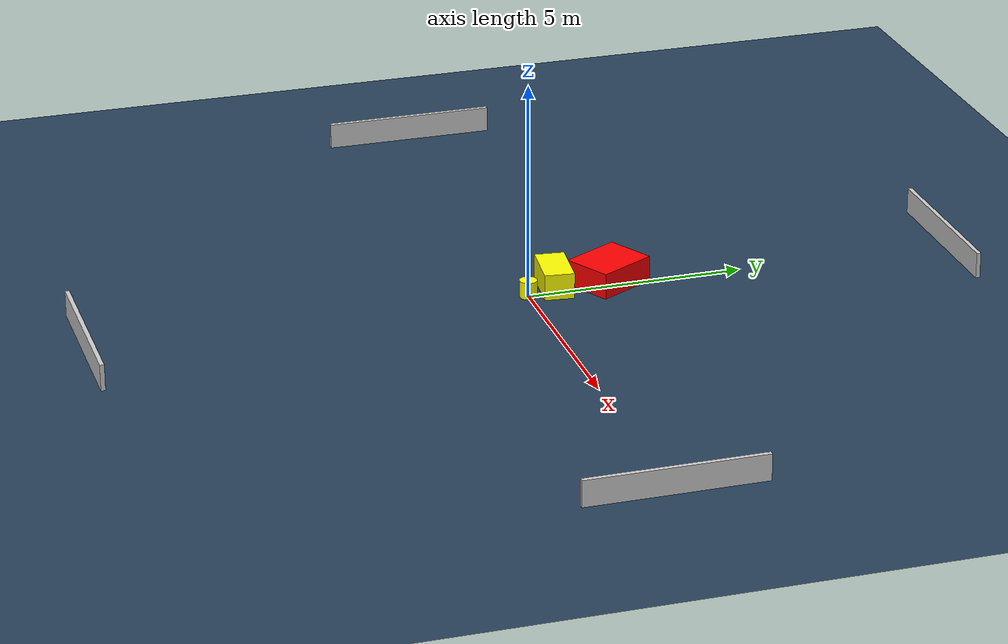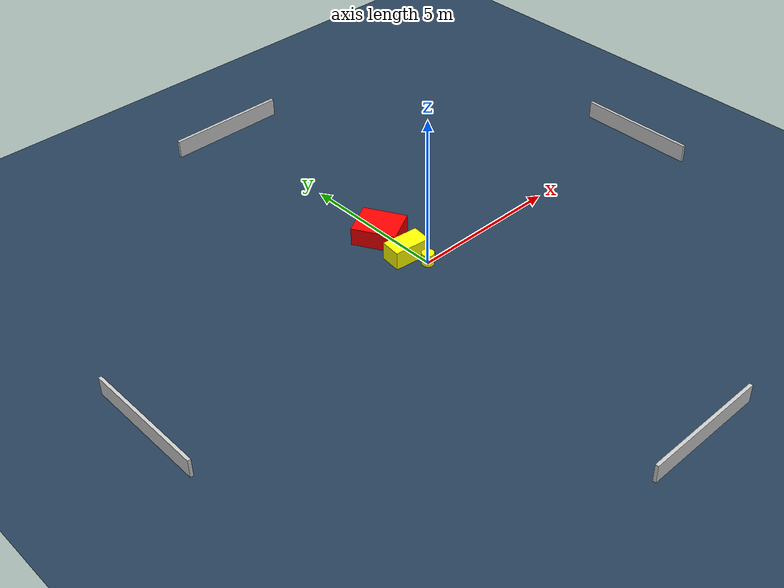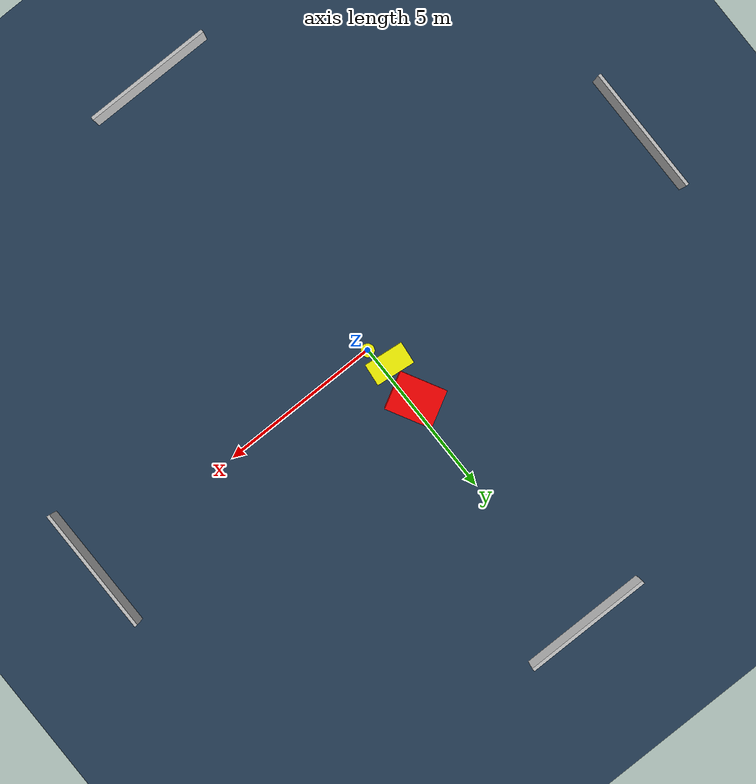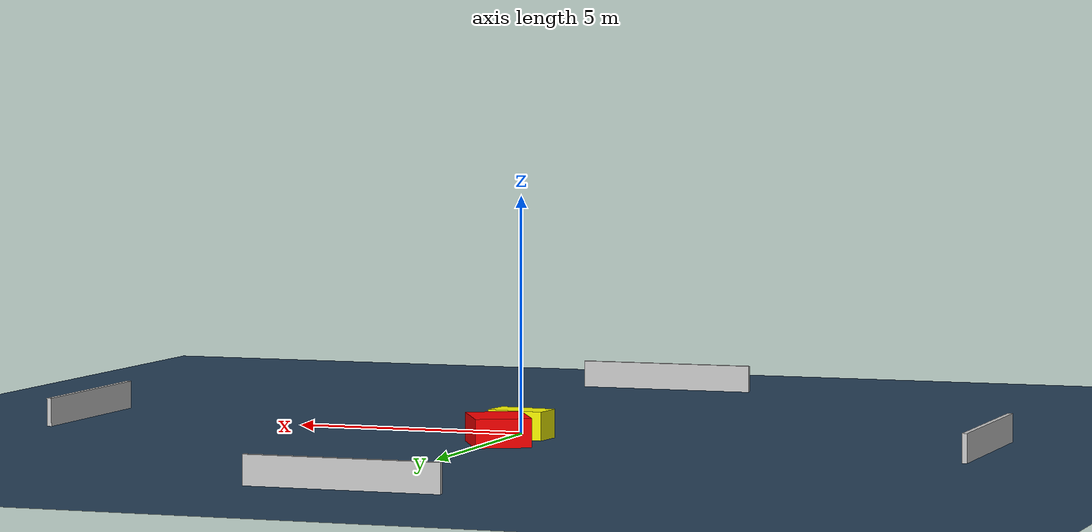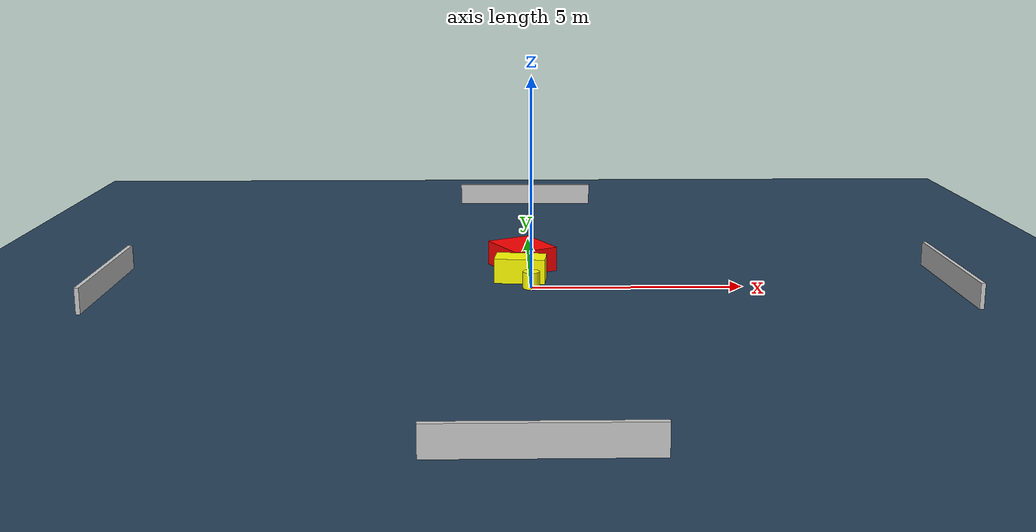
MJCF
<?xml version="1.0" ?>
<mujoco model="generated_environment">
  <option timestep="0.01" integrator="RK4" cone="elliptic"/>
  <default>
    <geom density="1"/>
  </default>
  <asset>
    <texture builtin="gradient" height="3072" name="skybox" rgb1="0.3 0.5 0.7" rgb2="0 0 0" type="skybox" width="512"/>
    <texture builtin="checker" height="300" name="groundplane" rgb1="0.2 0.3 0.4" rgb2="0.1 0.2 0.3" type="2d" width="300"/>
    <material name="groundplane" reflectance="0.2" texrepeat="5 5" texture="groundplane"/>
  </asset>
  <worldbody>
    <light dir="0 0 -1" directional="true" pos="0 0 1.5"/>
    <geom condim="3" friction="0.5 0.005 0.001" material="groundplane" name="floor" pos="0 0 0" size="0 0 0.05" type="plane"/>
    <body name="walls">
      <geom name="wall_1" condim="4" pos="-10.0 0.0 0.3" rgba="0.800000011920929 0.800000011920929 0.800000011920929 1.0" size="0.05 2.0 0.3" type="box"/>
      <geom name="wall_2" condim="4" pos="10.0 0.0 0.3" rgba="0.800000011920929 0.800000011920929 0.800000011920929 1.0" size="0.05 2.0 0.3" type="box"/>
      <geom name="wall_3" condim="4" pos="0.0 -10.0 0.3" rgba="0.800000011920929 0.800000011920929 0.800000011920929 1.0" size="2.0 0.05 0.3" type="box"/>
      <geom name="wall_4" condim="4" pos="0.0 10.0 0.3" rgba="0.800000011920929 0.800000011920929 0.800000011920929 1.0" size="2.0 0.05 0.3" type="box"/>
    </body>
    <body name="robot">
      <joint name="joint_x" type="slide" pos="0 0 0" axis="1 0 0"/>
      <joint name="joint_y" type="slide" pos="0 0 0" axis="0 1 0"/>
      <geom name="robot" type="cylinder" pos="0.0 0.0 0.2" size="0.2 0.2 0.0" mass="5.0" friction="1.0 0.005 0.0001" condim="4" rgba="1.0 1.0 0.0 1.0"/>
    </body>
    <body name="obstacle_1_movable">
      <geom name="obstacle_1_movable" condim="4" pos="-0.2431552878825533 0.6835377984837153 0.3" euler="0 0 83.77728404212102" friction="0.0 0.005 0.001" rgba="1.0 1.0 0.0 1.0" size="0.3401123916267315 0.6088637694697079 0.3" type="box" mass="0.1"/>
      <joint type="free"/>
    </body>
    <body name="obstacle_2_static">
      <geom name="obstacle_2_static" condim="4" pos="-0.191652567710933 1.9488785723954931 0.3" euler="0 0 28.580823776716862" friction="0.0 0.005 0.001" rgba="1.0 0.0 0.0 1.0" size="0.5833589745688845 0.7188799215739865 0.3" type="box"/>
    </body>
  </worldbody>
  <actuator>
    <motor name="actuator_x" joint="joint_x" gear="1" ctrlrange="-1 1"/>
    <motor name="actuator_y" joint="joint_y" gear="1" ctrlrange="-1 1"/>
  </actuator>
</mujoco>
